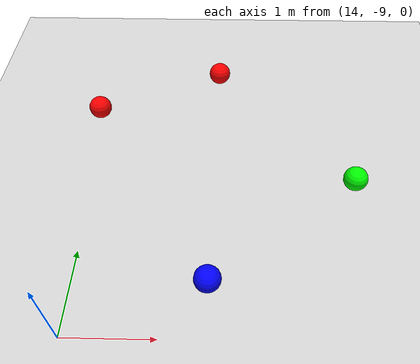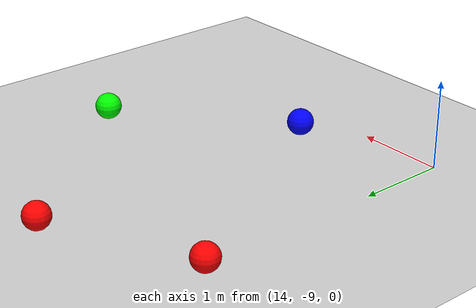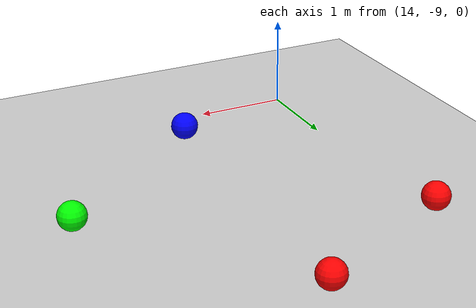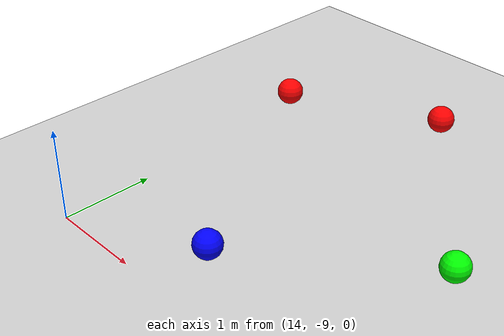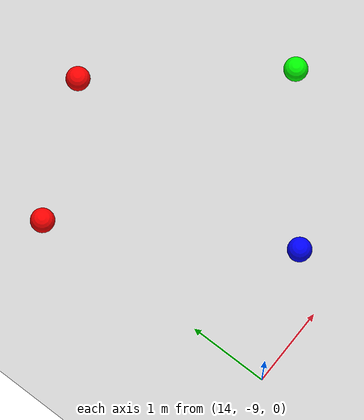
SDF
<sdf version="1.6">
 <world name="default">
  <model name="ground_plane">
   <static>1</static>
   <link name="link">
    <collision name="collision">
     <geometry><plane><normal>0 0 1</normal><size>100 100</size></plane></geometry>
     <surface><friction><ode><mu>100</mu><mu2>50</mu2></ode></friction></surface>
    </collision>
    <visual name="visual">
     <cast_shadows>0</cast_shadows>
     <geometry><plane><normal>0 0 1</normal><size>100 100</size></plane></geometry>
     <material>
      <script><uri>file://media/materials/scripts/gazebo.material</uri><name>Gazebo/Grey</name></script>
     </material>
    </visual>
   </link>
  </model>
  <model name="merdobot_world_model_son_1">
   <link name="link_2_clone_0_clone_0_clone_clone">
    <pose>12.0514 -3.45905 -0.396188 0 -0 0</pose>
    <inertial>
     <mass>0.001</mass>
     <inertia><ixx>0.1</ixx><ixy>0</ixy><ixz>0</ixz><iyy>0.1</iyy><iyz>0</iyz><izz>0.1</izz></inertia>
    </inertial>
    <visual name="visual">
     <geometry><sphere><radius>0.15</radius></sphere></geometry>
     <material>
      <lighting>1</lighting>
      <script><uri>file://media/materials/scripts/gazebo.material</uri><name>Gazebo/Grey</name></script>
      <ambient>1 0 0 0</ambient>
      <diffuse>1 0 0 0</diffuse>
      <specular>1 0 0 0</specular>
      <emissive>0 0 0 1</emissive>
      <shader type="vertex"><normal_map>__default__</normal_map></shader>
     </material>
    </visual>
    <collision name="collision">
     <geometry><sphere><radius>0.15</radius></sphere></geometry>
     <surface>
      <friction>
       <ode><mu>1</mu><mu2>1</mu2><fdir1>0 0 0</fdir1><slip1>0</slip1><slip2>0</slip2></ode>
       <torsional>
        <coefficient>1</coefficient>
        <patch_radius>0</patch_radius>
        <surface_radius>0</surface_radius>
        <use_patch_radius>1</use_patch_radius>
        <ode><slip>0</slip></ode>
       </torsional>
      </friction>
      <bounce><restitution_coefficient>0</restitution_coefficient><threshold>1e+06</threshold></bounce>
      <contact>
       <collide_without_contact>0</collide_without_contact>
       <collide_without_contact_bitmask>1</collide_without_contact_bitmask>
       <collide_bitmask>1</collide_bitmask>
       <ode>
        <soft_cfm>0</soft_cfm>
        <soft_erp>0.2</soft_erp>
        <kp>1e+13</kp>
        <kd>1</kd>
        <max_vel>0.01</max_vel>
        <min_depth>0</min_depth>
       </ode>
       <bullet>
        <split_impulse>1</split_impulse>
        <split_impulse_penetration_threshold>-0.01</split_impulse_penetration_threshold>
        <soft_cfm>0</soft_cfm>
        <soft_erp>0.2</soft_erp>
        <kp>1e+13</kp>
        <kd>1</kd>
       </bullet>
      </contact>
     </surface>
    </collision>
   </link>
   <link name="link_2_clone_0_clone_0_clone_clone_clone">
    <pose>13.6924 -2.68946 -0.400272 0 -0 0</pose>
    <inertial>
     <mass>0.001</mass>
     <inertia><ixx>0.1</ixx><ixy>0</ixy><ixz>0</ixz><iyy>0.1</iyy><iyz>0</iyz><izz>0.1</izz></inertia>
    </inertial>
    <visual name="visual">
     <geometry><sphere><radius>0.15</radius></sphere></geometry>
     <material>
      <lighting>1</lighting>
      <script><uri>file://media/materials/scripts/gazebo.material</uri><name>Gazebo/Grey</name></script>
      <ambient>1 0 0 0</ambient>
      <diffuse>1 0 0 0</diffuse>
      <specular>1 0 0 0</specular>
      <emissive>0 0 0 1</emissive>
      <shader type="vertex"><normal_map>__default__</normal_map></shader>
     </material>
    </visual>
    <collision name="collision">
     <geometry><sphere><radius>0.15</radius></sphere></geometry>
     <surface>
      <friction>
       <ode><mu>1</mu><mu2>1</mu2><fdir1>0 0 0</fdir1><slip1>0</slip1><slip2>0</slip2></ode>
       <torsional>
        <coefficient>1</coefficient>
        <patch_radius>0</patch_radius>
        <surface_radius>0</surface_radius>
        <use_patch_radius>1</use_patch_radius>
        <ode><slip>0</slip></ode>
       </torsional>
      </friction>
      <bounce><restitution_coefficient>0</restitution_coefficient><threshold>1e+06</threshold></bounce>
      <contact>
       <collide_without_contact>0</collide_without_contact>
       <collide_without_contact_bitmask>1</collide_without_contact_bitmask>
       <collide_bitmask>1</collide_bitmask>
       <ode>
        <soft_cfm>0</soft_cfm>
        <soft_erp>0.2</soft_erp>
        <kp>1e+13</kp>
        <kd>1</kd>
        <max_vel>0.01</max_vel>
        <min_depth>0</min_depth>
       </ode>
       <bullet>
        <split_impulse>1</split_impulse>
        <split_impulse_penetration_threshold>-0.01</split_impulse_penetration_threshold>
        <soft_cfm>0</soft_cfm>
        <soft_erp>0.2</soft_erp>
        <kp>1e+13</kp>
        <kd>1</kd>
       </bullet>
      </contact>
     </surface>
    </collision>
   </link>
   <link name="link_2_clone_clone_clone_0_clone_clone_clone_clone">
    <pose>13.6295 -6.07275 -0.383899 0 -0 0</pose>
    <inertial>
     <mass>0.001</mass>
     <inertia><ixx>0.1</ixx><ixy>0</ixy><ixz>0</ixz><iyy>0.1</iyy><iyz>0</iyz><izz>0.1</izz></inertia>
    </inertial>
    <visual name="visual">
     <geometry><sphere><radius>0.15</radius></sphere></geometry>
     <material>
      <lighting>1</lighting>
      <script><uri>file://media/materials/scripts/gazebo.material</uri><name>Gazebo/Grey</name></script>
      <ambient>0 0 1 0</ambient>
      <diffuse>0 0 1 0</diffuse>
      <specular>0 0 1 0</specular>
      <emissive>0 0 0 1</emissive>
      <shader type="vertex"><normal_map>__default__</normal_map></shader>
     </material>
    </visual>
    <collision name="collision">
     <geometry><sphere><radius>0.15</radius></sphere></geometry>
     <surface>
      <friction>
       <ode><mu>1</mu><mu2>1</mu2><fdir1>0 0 0</fdir1><slip1>0</slip1><slip2>0</slip2></ode>
       <torsional>
        <coefficient>1</coefficient>
        <patch_radius>0</patch_radius>
        <surface_radius>0</surface_radius>
        <use_patch_radius>1</use_patch_radius>
        <ode><slip>0</slip></ode>
       </torsional>
      </friction>
      <bounce><restitution_coefficient>0</restitution_coefficient><threshold>1e+06</threshold></bounce>
      <contact>
       <collide_without_contact>0</collide_without_contact>
       <collide_without_contact_bitmask>1</collide_without_contact_bitmask>
       <collide_bitmask>1</collide_bitmask>
       <ode>
        <soft_cfm>0</soft_cfm>
        <soft_erp>0.2</soft_erp>
        <kp>1e+13</kp>
        <kd>1</kd>
        <max_vel>0.01</max_vel>
        <min_depth>0</min_depth>
       </ode>
       <bullet>
        <split_impulse>1</split_impulse>
        <split_impulse_penetration_threshold>-0.01</split_impulse_penetration_threshold>
        <soft_cfm>0</soft_cfm>
        <soft_erp>0.2</soft_erp>
        <kp>1e+13</kp>
        <kd>1</kd>
       </bullet>
      </contact>
     </surface>
    </collision>
   </link>
   <link name="link_2_clone_clone_clone_clone_0_clone_clone_clone_0_clone">
    <pose>15.3929 -4.67984 -0.395394 0 -0 0</pose>
    <inertial>
     <mass>0.001</mass>
     <inertia><ixx>0.1</ixx><ixy>0</ixy><ixz>0</ixz><iyy>0.1</iyy><iyz>0</iyz><izz>0.1</izz></inertia>
    </inertial>
    <visual name="visual">
     <geometry><sphere><radius>0.15</radius></sphere></geometry>
     <material>
      <lighting>1</lighting>
      <script><uri>file://media/materials/scripts/gazebo.material</uri><name>Gazebo/Grey</name></script>
      <ambient>0 1 0 0</ambient>
      <diffuse>0 1 0 0</diffuse>
      <specular>0 1 0 0</specular>
      <emissive>0 0 0 1</emissive>
      <shader type="vertex"><normal_map>__default__</normal_map></shader>
     </material>
    </visual>
    <collision name="collision">
     <geometry><sphere><radius>0.15</radius></sphere></geometry>
     <surface>
      <friction>
       <ode><mu>1</mu><mu2>1</mu2><fdir1>0 0 0</fdir1><slip1>0</slip1><slip2>0</slip2></ode>
       <torsional>
        <coefficient>1</coefficient>
        <patch_radius>0</patch_radius>
        <surface_radius>0</surface_radius>
        <use_patch_radius>1</use_patch_radius>
        <ode><slip>0</slip></ode>
       </torsional>
      </friction>
      <bounce><restitution_coefficient>0</restitution_coefficient><threshold>1e+06</threshold></bounce>
      <contact>
       <collide_without_contact>0</collide_without_contact>
       <collide_without_contact_bitmask>1</collide_without_contact_bitmask>
       <collide_bitmask>1</collide_bitmask>
       <ode>
        <soft_cfm>0</soft_cfm>
        <soft_erp>0.2</soft_erp>
        <kp>1e+13</kp>
        <kd>1</kd>
        <max_vel>0.01</max_vel>
        <min_depth>0</min_depth>
       </ode>
       <bullet>
        <split_impulse>1</split_impulse>
        <split_impulse_penetration_threshold>-0.01</split_impulse_penetration_threshold>
        <soft_cfm>0</soft_cfm>
        <soft_erp>0.2</soft_erp>
        <kp>1e+13</kp>
        <kd>1</kd>
       </bullet>
      </contact>
     </surface>
    </collision>
   </link>
   <static>0</static>
   <pose>1.85279 -2.34253 0.57712 0 -0 0</pose>
  </model>
 </world>
</sdf>
